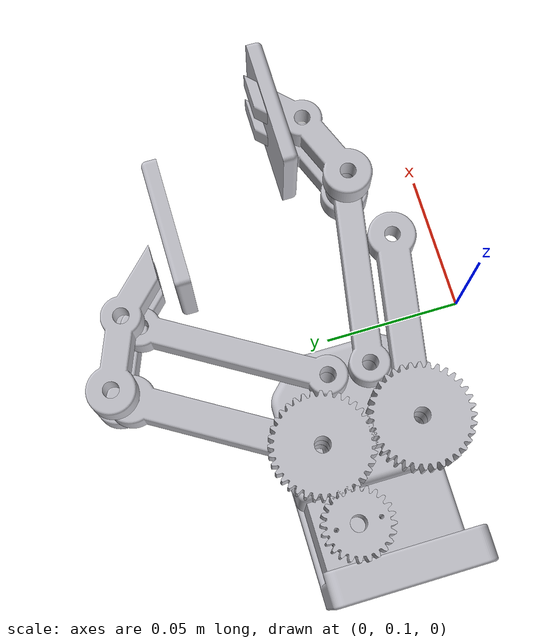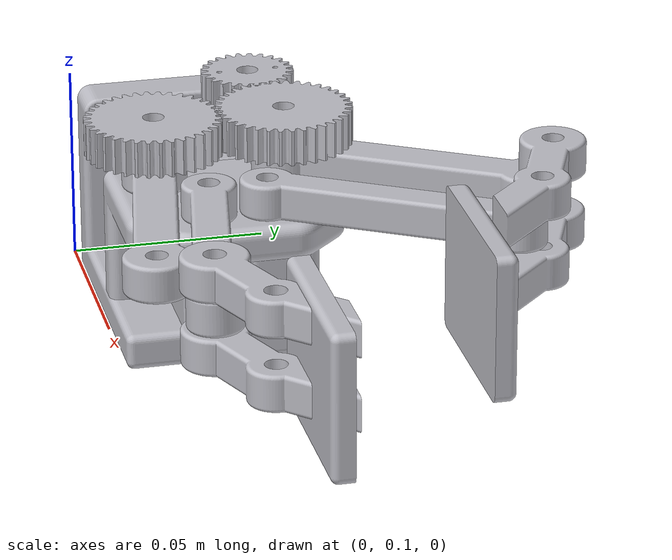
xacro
<!-- gripper_a: 극한로봇 그리퍼 모듈 (파라렐 4절링크 그리퍼, XC430 x2 구동) -->
<robot xmlns:xacro="http://www.ros.org/wiki/xacro" name="gripper_a">

<link name="gripper_a_base_link">
  <inertial>
    <origin xyz="-0.06930330432389567 0.1480589720476463 -0.025544286170088252" rpy="0 0 0" />
    <mass value="0.9719353305681612" />
    <inertia ixx="0.00049" iyy="0.000557" izz="0.000578" ixy="-1e-06" iyz="-9e-06" ixz="0.000116" />
  </inertial>
  <visual>
    <origin xyz="0 0 0" rpy="0 0 0" />
    <geometry>
      <mesh filename="package://robot_arm_description/meshes/grippers/gripper_a/base_link.stl" scale="0.001 0.001 0.001" />
    </geometry>
    <material name="silver" />
  </visual>
  <collision>
    <origin xyz="0 0 0" rpy="0 0 0" />
    <geometry>
      <mesh filename="package://robot_arm_description/meshes/grippers/gripper_a/base_link.stl" scale="0.001 0.001 0.001" />
    </geometry>
  </collision>
</link>

<link name="gripper_a_link1">
  <inertial>
    <origin xyz="0.025240953749213958 0.02424613800333089 0.004999999999999901" rpy="0 0 0" />
    <mass value="0.0851839232743157" />
    <inertia ixx="2.8e-05" iyy="3e-05" izz="5.7e-05" ixy="-2.7e-05" iyz="-0.0" ixz="0.0" />
  </inertial>
  <visual>
    <origin xyz="0.038971 -0.164837 0.0" rpy="0 0 0" />
    <geometry>
      <mesh filename="package://robot_arm_description/meshes/grippers/gripper_a/link1.stl" scale="0.001 0.001 0.001" />
    </geometry>
    <material name="silver" />
  </visual>
  <collision>
    <origin xyz="0.038971 -0.164837 0.0" rpy="0 0 0" />
    <geometry>
      <mesh filename="package://robot_arm_description/meshes/grippers/gripper_a/link1.stl" scale="0.001 0.001 0.001" />
    </geometry>
  </collision>
</link>

<link name="gripper_a_link3">
  <inertial>
    <origin xyz="0.018230231416085364 -0.02987724109270805 0.004999999999999947" rpy="0 0 0" />
    <mass value="0.08518393559594871" />
    <inertia ixx="4.2e-05" iyy="1.7e-05" izz="5.7e-05" ixy="2.4e-05" iyz="0.0" ixz="0.0" />
  </inertial>
  <visual>
    <origin xyz="0.038971 -0.128737 0.0" rpy="0 0 0" />
    <geometry>
      <mesh filename="package://robot_arm_description/meshes/grippers/gripper_a/link3.stl" scale="0.001 0.001 0.001" />
    </geometry>
    <material name="silver" />
  </visual>
  <collision>
    <origin xyz="0.038971 -0.128737 0.0" rpy="0 0 0" />
    <geometry>
      <mesh filename="package://robot_arm_description/meshes/grippers/gripper_a/link3.stl" scale="0.001 0.001 0.001" />
    </geometry>
  </collision>
</link>

<link name="gripper_a_link2">
  <inertial>
    <origin xyz="0.02524079026132333 0.024246225707795138 0.004999999999999907" rpy="0 0 0" />
    <mass value="0.06678651495220049" />
    <inertia ixx="2e-05" iyy="2.2e-05" izz="4.1e-05" ixy="-2e-05" iyz="0.0" ixz="-0.0" />
  </inertial>
  <visual>
    <origin xyz="0.014093 -0.154787 0.0" rpy="0 0 0" />
    <geometry>
      <mesh filename="package://robot_arm_description/meshes/grippers/gripper_a/link2.stl" scale="0.001 0.001 0.001" />
    </geometry>
    <material name="silver" />
  </visual>
  <collision>
    <origin xyz="0.014093 -0.154787 0.0" rpy="0 0 0" />
    <geometry>
      <mesh filename="package://robot_arm_description/meshes/grippers/gripper_a/link2.stl" scale="0.001 0.001 0.001" />
    </geometry>
  </collision>
</link>

<link name="gripper_a_link4">
  <inertial>
    <origin xyz="0.018230065239373604 -0.029877294933871715 0.004999999999999914" rpy="0 0 0" />
    <mass value="0.06678651495224165" />
    <inertia ixx="3e-05" iyy="1.2e-05" izz="4.1e-05" ixy="1.8e-05" iyz="-0.0" ixz="-0.0" />
  </inertial>
  <visual>
    <origin xyz="0.014093 -0.138787 0.0" rpy="0 0 0" />
    <geometry>
      <mesh filename="package://robot_arm_description/meshes/grippers/gripper_a/link4.stl" scale="0.001 0.001 0.001" />
    </geometry>
    <material name="silver" />
  </visual>
  <collision>
    <origin xyz="0.014093 -0.138787 0.0" rpy="0 0 0" />
    <geometry>
      <mesh filename="package://robot_arm_description/meshes/grippers/gripper_a/link4.stl" scale="0.001 0.001 0.001" />
    </geometry>
  </collision>
</link>

<link name="gripper_a_link5">
  <inertial>
    <origin xyz="0.016772894969398076 -0.00818690525076679 0.004999999999999888" rpy="0 0 0" />
    <mass value="0.050250119706585376" />
    <inertia ixx="4e-06" iyy="1.2e-05" izz="1.5e-05" ixy="6e-06" iyz="-0.0" ixz="-0.0" />
  </inertial>
  <visual>
    <origin xyz="-0.011511 -0.213329 -0.01" rpy="0 0 0" />
    <geometry>
      <mesh filename="package://robot_arm_description/meshes/grippers/gripper_a/link5.stl" scale="0.001 0.001 0.001" />
    </geometry>
    <material name="silver" />
  </visual>
  <collision>
    <origin xyz="-0.011511 -0.213329 -0.01" rpy="0 0 0" />
    <geometry>
      <mesh filename="package://robot_arm_description/meshes/grippers/gripper_a/link5.stl" scale="0.001 0.001 0.001" />
    </geometry>
  </collision>
</link>

<link name="gripper_a_link6">
  <inertial>
    <origin xyz="0.016772418745376695 0.008186864045676201 0.005000000001134073" rpy="0 0 0" />
    <mass value="0.050250119235721834" />
    <inertia ixx="4e-06" iyy="1.2e-05" izz="1.5e-05" ixy="-6e-06" iyz="-0.0" ixz="-0.0" />
  </inertial>
  <visual>
    <origin xyz="0.00251 -0.068983 -0.01" rpy="0 0 0" />
    <geometry>
      <mesh filename="package://robot_arm_description/meshes/grippers/gripper_a/link6.stl" scale="0.001 0.001 0.001" />
    </geometry>
    <material name="silver" />
  </visual>
  <collision>
    <origin xyz="0.00251 -0.068983 -0.01" rpy="0 0 0" />
    <geometry>
      <mesh filename="package://robot_arm_description/meshes/grippers/gripper_a/link6.stl" scale="0.001 0.001 0.001" />
    </geometry>
  </collision>
</link>

<link name="gripper_a_plate2">
  <inertial>
    <origin xyz="0.03765889407274898 -0.02538098094645444 -0.017000000000000397" rpy="0 0 0" />
    <mass value="0.0928673984319522" />
    <inertia ixx="1.2e-05" iyy="3.1e-05" izz="1.9e-05" ixy="0.0" iyz="-0.0" ixz="-0.0" />
  </inertial>
  <visual>
    <origin xyz="-0.030604 -0.209596 -0.019" rpy="0 0 0" />
    <geometry>
      <mesh filename="package://robot_arm_description/meshes/grippers/gripper_a/plate2.stl" scale="0.001 0.001 0.001" />
    </geometry>
    <material name="silver" />
  </visual>
  <collision>
    <origin xyz="-0.030604 -0.209596 -0.019" rpy="0 0 0" />
    <geometry>
      <mesh filename="package://robot_arm_description/meshes/grippers/gripper_a/plate2.stl" scale="0.001 0.001 0.001" />
    </geometry>
  </collision>
</link>

<link name="gripper_a_plate1">
  <inertial>
    <origin xyz="0.052262323030069044 0.03664491380276268 -0.018000000000000082" rpy="0 0 0" />
    <mass value="0.09286739843195235" />
    <inertia ixx="1.2e-05" iyy="3.1e-05" izz="1.9e-05" ixy="-0.0" iyz="0.0" ixz="-0.0" />
  </inertial>
  <visual>
    <origin xyz="-0.003979 -0.061459 -0.02" rpy="0 0 0" />
    <geometry>
      <mesh filename="package://robot_arm_description/meshes/grippers/gripper_a/plate1.stl" scale="0.001 0.001 0.001" />
    </geometry>
    <material name="silver" />
  </visual>
  <collision>
    <origin xyz="-0.003979 -0.061459 -0.02" rpy="0 0 0" />
    <geometry>
      <mesh filename="package://robot_arm_description/meshes/grippers/gripper_a/plate1.stl" scale="0.001 0.001 0.001" />
    </geometry>
  </collision>
</link>

<link name="gripper_a_link5_2">
  <inertial>
    <origin xyz="0.016772882317493503 -0.00818693116986946 -0.0050000000000001285" rpy="0 0 0" />
    <mass value="0.050250119706585376" />
    <inertia ixx="4e-06" iyy="1.2e-05" izz="1.5e-05" ixy="6e-06" iyz="-0.0" ixz="-0.0" />
  </inertial>
  <visual>
    <origin xyz="-0.011511 -0.213329 0.0" rpy="0 0 0" />
    <geometry>
      <mesh filename="package://robot_arm_description/meshes/grippers/gripper_a/link5_2.stl" scale="0.001 0.001 0.001" />
    </geometry>
    <material name="silver" />
  </visual>
  <collision>
    <origin xyz="-0.011511 -0.213329 0.0" rpy="0 0 0" />
    <geometry>
      <mesh filename="package://robot_arm_description/meshes/grippers/gripper_a/link5_2.stl" scale="0.001 0.001 0.001" />
    </geometry>
  </collision>
</link>

<link name="gripper_a_component53_1">
  <inertial>
    <origin xyz="0.016772418745480168 0.008186864045702721 -0.004999999998866036" rpy="0 0 0" />
    <mass value="0.0502501192354395" />
    <inertia ixx="4e-06" iyy="1.2e-05" izz="1.5e-05" ixy="-6e-06" iyz="-0.0" ixz="-0.0" />
  </inertial>
  <visual>
    <origin xyz="0.00251 -0.068983 0.0" rpy="0 0 0" />
    <geometry>
      <mesh filename="package://robot_arm_description/meshes/grippers/gripper_a/component53_1.stl" scale="0.001 0.001 0.001" />
    </geometry>
    <material name="silver" />
  </visual>
  <collision>
    <origin xyz="0.00251 -0.068983 0.0" rpy="0 0 0" />
    <geometry>
      <mesh filename="package://robot_arm_description/meshes/grippers/gripper_a/component53_1.stl" scale="0.001 0.001 0.001" />
    </geometry>
  </collision>
</link>

<link name="gripper_a_Spur_Gear_36_teeth_1">
  <inertial>
    <origin xyz="-3.2714716231840857e-07 -4.718577417683889e-08 0.004999999999850697" rpy="0 0 0" />
    <mass value="0.07732730680958116" />
    <inertia ixx="7e-06" iyy="7e-06" izz="1.3e-05" ixy="-0.0" iyz="-0.0" ixz="-0.0" />
  </inertial>
  <visual>
    <origin xyz="0.038971 -0.164837 -0.01" rpy="0 0 0" />
    <geometry>
      <mesh filename="package://robot_arm_description/meshes/grippers/gripper_a/Spur_Gear_36_teeth_1.stl" scale="0.001 0.001 0.001" />
    </geometry>
    <material name="silver" />
  </visual>
  <collision>
    <origin xyz="0.038971 -0.164837 -0.01" rpy="0 0 0" />
    <geometry>
      <mesh filename="package://robot_arm_description/meshes/grippers/gripper_a/Spur_Gear_36_teeth_1.stl" scale="0.001 0.001 0.001" />
    </geometry>
  </collision>
</link>

<link name="gripper_a_Spur_Gear_36_teeth__1__1">
  <inertial>
    <origin xyz="-3.2694216475087634e-07 -5.104868550098729e-08 0.004999999999850752" rpy="0 0 0" />
    <mass value="0.07732730680957652" />
    <inertia ixx="7e-06" iyy="7e-06" izz="1.3e-05" ixy="-0.0" iyz="0.0" ixz="-0.0" />
  </inertial>
  <visual>
    <origin xyz="0.038971 -0.128737 -0.01" rpy="0 0 0" />
    <geometry>
      <mesh filename="package://robot_arm_description/meshes/grippers/gripper_a/Spur_Gear_36_teeth__1__1.stl" scale="0.001 0.001 0.001" />
    </geometry>
    <material name="silver" />
  </visual>
  <collision>
    <origin xyz="0.038971 -0.128737 -0.01" rpy="0 0 0" />
    <geometry>
      <mesh filename="package://robot_arm_description/meshes/grippers/gripper_a/Spur_Gear_36_teeth__1__1.stl" scale="0.001 0.001 0.001" />
    </geometry>
  </collision>
</link>

<link name="gripper_a_Spur_Gear_24_teeth__2__1">
  <inertial>
    <origin xyz="-7.93697714496222e-09 3.0987010735117337e-09 0.004999999999210494" rpy="0 0 0" />
    <mass value="0.03267478605457942" />
    <inertia ixx="2e-06" iyy="2e-06" izz="3e-06" ixy="0.0" iyz="0.0" ixz="0.0" />
  </inertial>
  <visual>
    <origin xyz="0.068 -0.161 -0.01" rpy="0 0 0" />
    <geometry>
      <mesh filename="package://robot_arm_description/meshes/grippers/gripper_a/Spur_Gear_24_teeth__2__1.stl" scale="0.001 0.001 0.001" />
    </geometry>
    <material name="silver" />
  </visual>
  <collision>
    <origin xyz="0.068 -0.161 -0.01" rpy="0 0 0" />
    <geometry>
      <mesh filename="package://robot_arm_description/meshes/grippers/gripper_a/Spur_Gear_24_teeth__2__1.stl" scale="0.001 0.001 0.001" />
    </geometry>
  </collision>
</link>

<link name="gripper_a_motor_adapter">
  <inertial>
    <origin xyz="-1.013170242147865e-09 2.399086901361258e-09 0.004944029318102771" rpy="0 0 0" />
    <mass value="0.020408786210083112" />
    <inertia ixx="1e-06" iyy="1e-06" izz="1e-06" ixy="0.0" iyz="0.0" ixz="-0.0" />
  </inertial>
  <visual>
    <origin xyz="0.068 -0.161 -0.0" rpy="0 0 0" />
    <geometry>
      <mesh filename="package://robot_arm_description/meshes/grippers/gripper_a/motor_adapter.stl" scale="0.001 0.001 0.001" />
    </geometry>
    <material name="silver" />
  </visual>
  <collision>
    <origin xyz="0.068 -0.161 -0.0" rpy="0 0 0" />
    <geometry>
      <mesh filename="package://robot_arm_description/meshes/grippers/gripper_a/motor_adapter.stl" scale="0.001 0.001 0.001" />
    </geometry>
  </collision>
</link>

<link name="gripper_a_top_plate">
  <inertial>
    <origin xyz="0.017426995133512174 -5.1303759518450676e-08 0.02155194345598499" rpy="0 0 0" />
    <mass value="0.4820949144390761" />
    <inertia ixx="0.00016" iyy="0.000149" izz="0.000203" ixy="0.0" iyz="-0.0" ixz="-2.3e-05" />
  </inertial>
  <visual>
    <origin xyz="0.052321 -0.146787 0.036" rpy="0 0 0" />
    <geometry>
      <mesh filename="package://robot_arm_description/meshes/grippers/gripper_a/top_plate.stl" scale="0.001 0.001 0.001" />
    </geometry>
    <material name="silver" />
  </visual>
  <collision>
    <origin xyz="0.052321 -0.146787 0.036" rpy="0 0 0" />
    <geometry>
      <mesh filename="package://robot_arm_description/meshes/grippers/gripper_a/top_plate.stl" scale="0.001 0.001 0.001" />
    </geometry>
  </collision>
</link>

<!-- 실측 기구 개폐range/방향 미확정 placeholder, 사용자 수동 캘리브레이션 진행 중.
     mimic(joint5<->joint6) 임시 해제 — 두 핑거 각도가 대칭이 아니라 -1 배율로는 안 맞음, 개별 지시로 재조정 예정.
     range는 우선 넉넉하게(±1.5708rad=±90도) 잡아둠. -->
<joint name="gripper_a_joint5" type="revolute">
  <origin xyz="0.01335 0.01805 0.036" rpy="0 0 0" />
  <parent link="gripper_a_top_plate" />
  <child link="gripper_a_link1" />
  <axis xyz="-0.0 0.0 -1.0" />
  <limit lower="-1.5708" upper="1.5708" effort="5" velocity="1.0" />
</joint>

<joint name="gripper_a_joint6" type="revolute">
  <origin xyz="0.01335 -0.01805 0.036" rpy="0 0 0" />
  <parent link="gripper_a_top_plate" />
  <child link="gripper_a_link3" />
  <axis xyz="-0.0 0.0 -1.0" />
  <limit lower="-1.5708" upper="1.5708" effort="5" velocity="1.0" />
</joint>

<!-- link2는 평행4절링크의 두번째 크랭크 — link1(joint5)과 top_plate 기준 같은 각도로 돌아야 평행 유지됨.
     루프 단순화로 독립 관절이 되며 구동과 무관하게 정지해 있던 것을 mimic으로 복원(같은 축·동일 부호). -->
<joint name="gripper_a_joint7" type="continuous">
  <origin xyz="0.038228 0.008 0.036" rpy="0 0 0" />
  <parent link="gripper_a_top_plate" />
  <child link="gripper_a_link2" />
  <axis xyz="-0.0 0.0 -1.0" />
  <mimic joint="gripper_a_joint5" multiplier="1" offset="0" />
</joint>

<!-- link4 = link2와 대칭인 반대쪽 평행4절링크 크랭크, link3(joint6)를 따라감. -->
<joint name="gripper_a_joint8" type="continuous">
  <origin xyz="0.038228 -0.008 0.036" rpy="0 0 0" />
  <parent link="gripper_a_top_plate" />
  <child link="gripper_a_link4" />
  <axis xyz="-0.0 0.0 -1.0" />
  <mimic joint="gripper_a_joint6" multiplier="1" offset="0" />
</joint>

<joint name="gripper_a_joint9" type="continuous">
  <origin xyz="0.053456 0.053654 0.01" rpy="0 0 0" />
  <parent link="gripper_a_link1" />
  <child link="gripper_a_link5" />
  <axis xyz="-0.0 0.0 -1.0" />
</joint>

<joint name="gripper_a_joint11" type="continuous">
  <origin xyz="0.061339 -0.049705 0.01" rpy="0 0 0" />
  <parent link="gripper_a_link3" />
  <child link="gripper_a_link6" />
  <axis xyz="-0.0 0.0 -1.0" />
</joint>

<joint name="gripper_a_fixed15" type="fixed">
  <origin xyz="0.016119 -0.008895 0.009" rpy="0 0 0" />
  <parent link="gripper_a_link5" />
  <child link="gripper_a_plate2" />
</joint>

<joint name="gripper_a_fixed16" type="fixed">
  <origin xyz="-0.018389 -0.017573 0.01" rpy="0 0 0" />
  <parent link="gripper_a_link6" />
  <child link="gripper_a_plate1" />
</joint>

<joint name="gripper_a_joint17" type="continuous">
  <origin xyz="0.053456 0.053654 0.0" rpy="0 0 0" />
  <parent link="gripper_a_link1" />
  <child link="gripper_a_link5_2" />
  <axis xyz="0.0 0.0 1.0" />
</joint>

<joint name="gripper_a_joint19" type="continuous">
  <origin xyz="0.061339 -0.049705 0.0" rpy="0 0 0" />
  <parent link="gripper_a_link3" />
  <child link="gripper_a_component53_1" />
  <axis xyz="0.0 -0.0 1.0" />
</joint>

<joint name="gripper_a_joint21" type="continuous">
  <origin xyz="0.0 0.0 0.01" rpy="0 0 0" />
  <parent link="gripper_a_link1" />
  <child link="gripper_a_Spur_Gear_36_teeth_1" />
  <axis xyz="0.0 0.0 1.0" />
</joint>

<joint name="gripper_a_joint22" type="continuous">
  <origin xyz="0.0 0.0 0.01" rpy="0 0 0" />
  <parent link="gripper_a_link3" />
  <child link="gripper_a_Spur_Gear_36_teeth__1__1" />
  <axis xyz="-0.0 0.0 -1.0" />
</joint>

<!-- 24T(모터) - 36T(joint5측 gripper_a_link1) 직결 치합 기어비 24:36 = 2:3 → 모터가 그리퍼(joint5)의
     2/3만큼 회전. 외접기어 치합이라 joint5/joint23 axis가 둘 다 base_link 기준 동일 -Z라 부호는 반대. -->
<joint name="gripper_a_joint23" type="continuous">
  <origin xyz="0.0 0.0 0.01" rpy="0 0 0" />
  <parent link="gripper_a_motor_adapter" />
  <child link="gripper_a_Spur_Gear_24_teeth__2__1" />
  <axis xyz="0.0 -0.0 -1.0" />
  <mimic joint="gripper_a_joint5" multiplier="-0.66667" offset="0" />
</joint>

<joint name="gripper_a_fixed24" type="fixed">
  <origin xyz="-0.068 0.161 0.0" rpy="0 0 0" />
  <parent link="gripper_a_base_link" />
  <child link="gripper_a_motor_adapter" />
</joint>

<joint name="gripper_a_fixed25" type="fixed">
  <origin xyz="-0.052321 0.146787 -0.036" rpy="0 0 0" />
  <parent link="gripper_a_base_link" />
  <child link="gripper_a_top_plate" />
</joint>

</robot>
